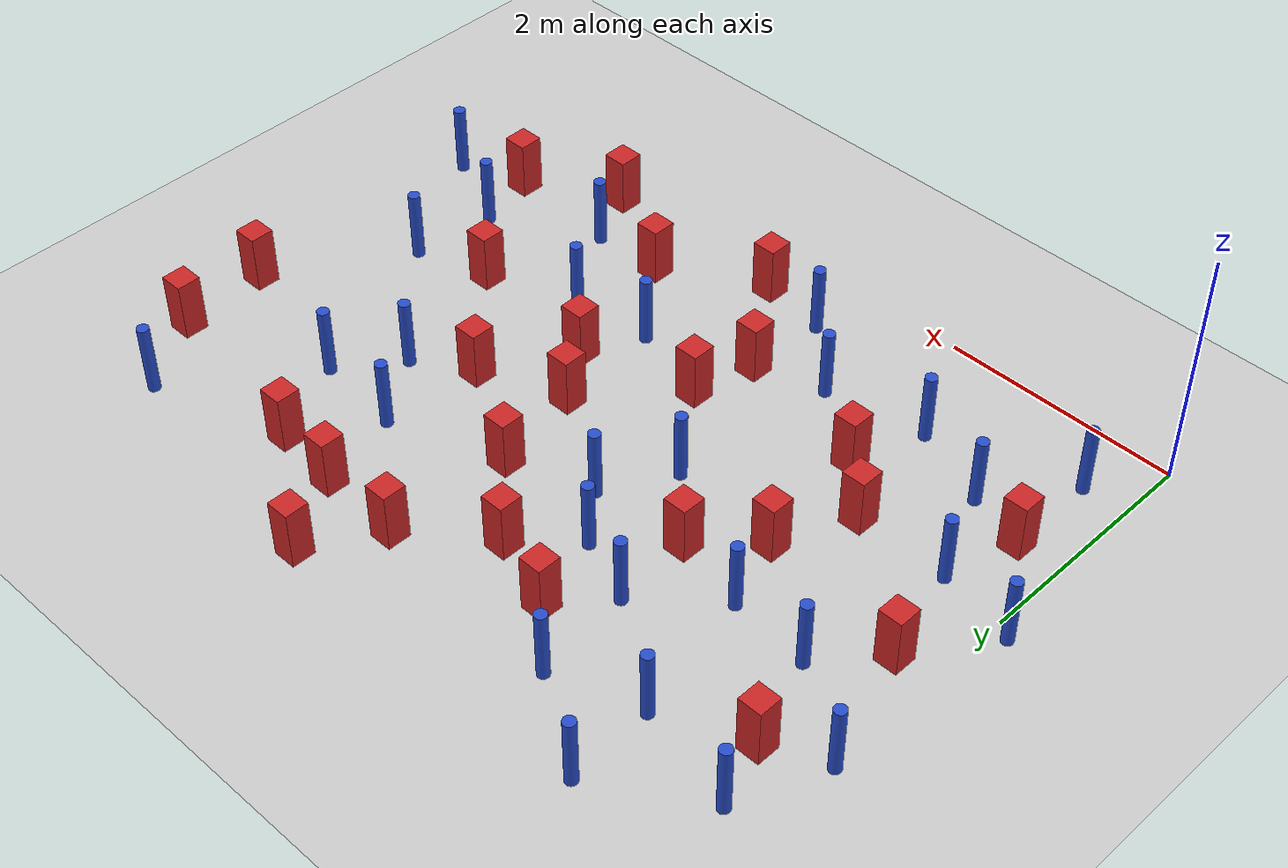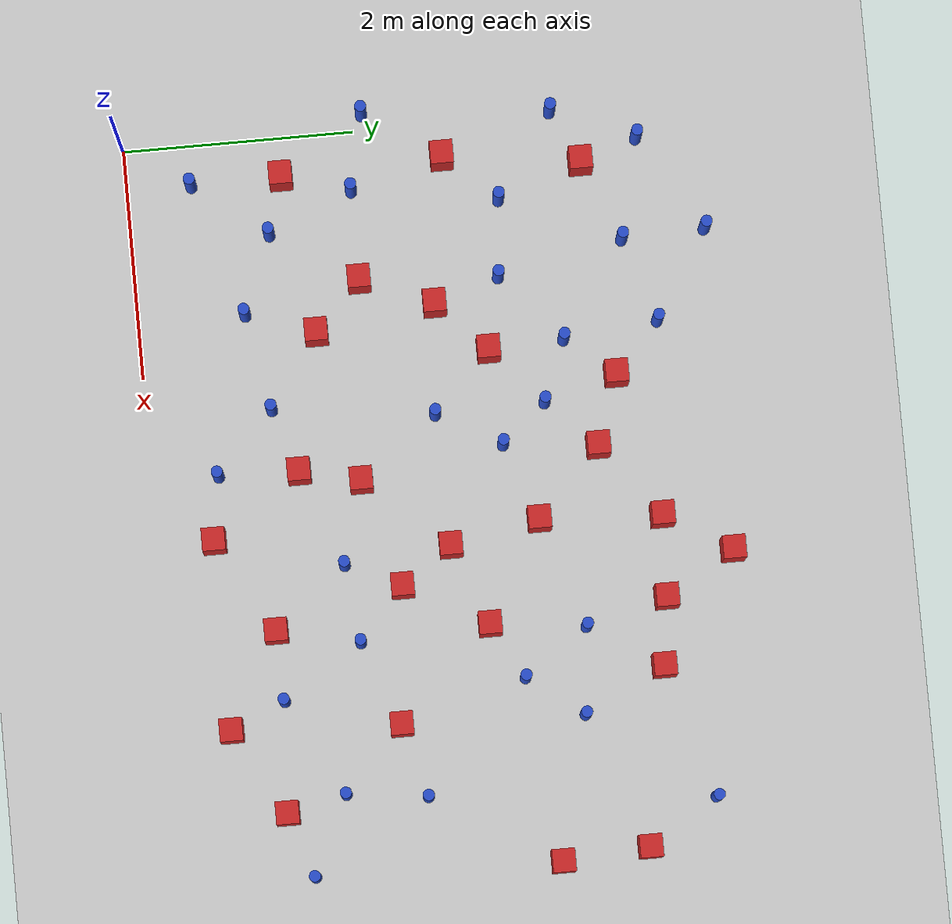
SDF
<sdf version="1.6">
 <world name="default">
  <model name="ground_plane">
   <static>1</static>
   <link name="link">
    <collision name="collision">
     <geometry><plane><normal>0 0 1</normal><size>100 100</size></plane></geometry>
     <surface><friction><ode><mu>100</mu><mu2>50</mu2></ode></friction></surface>
    </collision>
    <visual name="visual">
     <cast_shadows>0</cast_shadows>
     <geometry><plane><normal>0 0 1</normal><size>100 100</size></plane></geometry>
     <material>
      <ambient>1.0 1.0 1.0 1.0</ambient>
      <diffuse>0.8 0.8 0.8 1.0</diffuse>
      <specular>0.01 0.01 0.01 1.000000</specular>
     </material>
    </visual>
   </link>
  </model>
  <model name="pole_obstacle1">
   <static>true</static>
   <pose>2.54243289153 2.50024052344 2.88873142074e-08 -9.90536690232e-09 4.6021994898e-07 -1.20965994968e-07</pose>
   <link name="link">
    <pose>0 0 0.3 0 -0 0</pose>
    <inertial>
     <mass>1</mass>
     <inertia><ixx>0.145833</ixx><ixy>0</ixy><ixz>0</ixz><iyy>0.145833</iyy><iyz>0</iyz><izz>0.125</izz></inertia>
    </inertial>
    <collision name="collision">
     <geometry><cylinder><radius>0.05</radius><length>.6</length></cylinder></geometry>
    </collision>
    <visual name="visual">
     <geometry><cylinder><radius>0.05</radius><length>.6</length></cylinder></geometry>
     <material>
      <script><name>Gazebo/Blue</name><uri>file://media/materials/scripts/gazebo.material</uri></script>
     </material>
    </visual>
   </link>
  </model>
  <model name="square_post_obstacle1">
   <static>true</static>
   <pose>1.74829170394 1.53674628466 8.22691968438e-08 7.2212513382e-06 -7.54495500217e-07 2.29674213826e-05</pose>
   <link name="link">
    <pose>0 0 0.25 0 -0 0</pose>
    <inertial>
     <mass>100</mass>
     <inertia>
      <ixx>0.166667</ixx>
      <ixy>0</ixy>
      <ixz>0</ixz>
      <iyy>0.166667</iyy>
      <iyz>0</iyz>
      <izz>0.166667</izz>
     </inertia>
    </inertial>
    <collision name="collision"><geometry><box><size>.2 .2 .5</size></box></geometry></collision>
    <visual name="visual">
     <geometry><box><size>.2 .2 .5</size></box></geometry>
     <material>
      <script><name>Gazebo/Red</name><uri>file://media/materials/scripts/gazebo.material</uri></script>
     </material>
    </visual>
   </link>
  </model>
  <model name="pole_obstacle5">
   <static>true</static>
   <pose>1.12844807914 4.97022982654 2.88873142074e-08 -9.90536689852e-09 4.60219948989e-07 -1.2096599496e-07</pose>
   <link name="link">
    <pose>0 0 0.3 0 -0 0</pose>
    <inertial>
     <mass>1</mass>
     <inertia><ixx>0.145833</ixx><ixy>0</ixy><ixz>0</ixz><iyy>0.145833</iyy><iyz>0</iyz><izz>0.125</izz></inertia>
    </inertial>
    <collision name="collision">
     <geometry><cylinder><radius>0.05</radius><length>.6</length></cylinder></geometry>
    </collision>
    <visual name="visual">
     <geometry><cylinder><radius>0.05</radius><length>.6</length></cylinder></geometry>
     <material>
      <script><name>Gazebo/Blue</name><uri>file://media/materials/scripts/gazebo.material</uri></script>
     </material>
    </visual>
   </link>
  </model>
  <model name="pole_obstacle7">
   <static>true</static>
   <pose>5.83136260954 2.15012259453 2.88873142074e-08 -9.90536690245e-09 4.6021994898e-07 -1.20965994966e-07</pose>
   <link name="link">
    <pose>0 0 0.3 0 -0 0</pose>
    <inertial>
     <mass>1</mass>
     <inertia><ixx>0.145833</ixx><ixy>0</ixy><ixz>0</ixz><iyy>0.145833</iyy><iyz>0</iyz><izz>0.125</izz></inertia>
    </inertial>
    <collision name="collision">
     <geometry><cylinder><radius>0.05</radius><length>.6</length></cylinder></geometry>
    </collision>
    <visual name="visual">
     <geometry><cylinder><radius>0.05</radius><length>.6</length></cylinder></geometry>
     <material>
      <script><name>Gazebo/Blue</name><uri>file://media/materials/scripts/gazebo.material</uri></script>
     </material>
    </visual>
   </link>
  </model>
  <model name="pole_obstacle11">
   <static>true</static>
   <pose>2.91228357393 0.586450232013 2.88873142074e-08 -9.90536689285e-09 4.60219949002e-07 -1.20965994953e-07</pose>
   <link name="link">
    <pose>0 0 0.3 0 -0 0</pose>
    <inertial>
     <mass>1</mass>
     <inertia><ixx>0.145833</ixx><ixy>0</ixy><ixz>0</ixz><iyy>0.145833</iyy><iyz>0</iyz><izz>0.125</izz></inertia>
    </inertial>
    <collision name="collision">
     <geometry><cylinder><radius>0.05</radius><length>.6</length></cylinder></geometry>
    </collision>
    <visual name="visual">
     <geometry><cylinder><radius>0.05</radius><length>.6</length></cylinder></geometry>
     <material>
      <script><name>Gazebo/Blue</name><uri>file://media/materials/scripts/gazebo.material</uri></script>
     </material>
    </visual>
   </link>
  </model>
  <model name="pole_obstacle23">
   <static>true</static>
   <pose>0.532219835448 1.94401171994 2.88873142074e-08 -9.90536690151e-09 4.60219948982e-07 -1.20965994965e-07</pose>
   <link name="link">
    <pose>0 0 0.3 0 -0 0</pose>
    <inertial>
     <mass>1</mass>
     <inertia><ixx>0.145833</ixx><ixy>0</ixy><ixz>0</ixz><iyy>0.145833</iyy><iyz>0</iyz><izz>0.125</izz></inertia>
    </inertial>
    <collision name="collision">
     <geometry><cylinder><radius>0.05</radius><length>.6</length></cylinder></geometry>
    </collision>
    <visual name="visual">
     <geometry><cylinder><radius>0.05</radius><length>.6</length></cylinder></geometry>
     <material>
      <script><name>Gazebo/Blue</name><uri>file://media/materials/scripts/gazebo.material</uri></script>
     </material>
    </visual>
   </link>
  </model>
  <model name="square_post_obstacle19">
   <static>true</static>
   <pose>3.93917195799 4.95328247818 8.22691968438e-08 7.2212513382e-06 -7.54495500217e-07 2.29674213826e-05</pose>
   <link name="link">
    <pose>0 0 0.25 0 -0 0</pose>
    <inertial>
     <mass>100</mass>
     <inertia>
      <ixx>0.166667</ixx>
      <ixy>0</ixy>
      <ixz>0</ixz>
      <iyy>0.166667</iyy>
      <iyz>0</iyz>
      <izz>0.166667</izz>
     </inertia>
    </inertial>
    <collision name="collision"><geometry><box><size>.2 .2 .5</size></box></geometry></collision>
    <visual name="visual">
     <geometry><box><size>.2 .2 .5</size></box></geometry>
     <material>
      <script><name>Gazebo/Red</name><uri>file://media/materials/scripts/gazebo.material</uri></script>
     </material>
    </visual>
   </link>
  </model>
  <model name="square_post_obstacle24">
   <static>true</static>
   <pose>4.29908365261 0.968296629542 8.22691968438e-08 7.2212513382e-06 -7.54495500217e-07 2.29674213826e-05</pose>
   <link name="link">
    <pose>0 0 0.25 0 -0 0</pose>
    <inertial>
     <mass>100</mass>
     <inertia>
      <ixx>0.166667</ixx>
      <ixy>0</ixy>
      <ixz>0</ixz>
      <iyy>0.166667</iyy>
      <iyz>0</iyz>
      <izz>0.166667</izz>
     </inertia>
    </inertial>
    <collision name="collision"><geometry><box><size>.2 .2 .5</size></box></geometry></collision>
    <visual name="visual">
     <geometry><box><size>.2 .2 .5</size></box></geometry>
     <material>
      <script><name>Gazebo/Red</name><uri>file://media/materials/scripts/gazebo.material</uri></script>
     </material>
    </visual>
   </link>
  </model>
  <model name="square_post_obstacle26">
   <static>true</static>
   <pose>2.94013134057 3.8769609679 8.22691968438e-08 7.2212513382e-06 -7.54495500217e-07 2.29674213826e-05</pose>
   <link name="link">
    <pose>0 0 0.25 0 -0 0</pose>
    <inertial>
     <mass>100</mass>
     <inertia>
      <ixx>0.166667</ixx>
      <ixy>0</ixy>
      <ixz>0</ixz>
      <iyy>0.166667</iyy>
      <iyz>0</iyz>
      <izz>0.166667</izz>
     </inertia>
    </inertial>
    <collision name="collision"><geometry><box><size>.2 .2 .5</size></box></geometry></collision>
    <visual name="visual">
     <geometry><box><size>.2 .2 .5</size></box></geometry>
     <material>
      <script><name>Gazebo/Red</name><uri>file://media/materials/scripts/gazebo.material</uri></script>
     </material>
    </visual>
   </link>
  </model>
  <model name="pole_obstacle36">
   <static>true</static>
   <pose>0.719813225735 3.21163949339 2.88873142074e-08 -9.90536689636e-09 4.60219948994e-07 -1.20965994958e-07</pose>
   <link name="link">
    <pose>0 0 0.3 0 -0 0</pose>
    <inertial>
     <mass>1</mass>
     <inertia><ixx>0.145833</ixx><ixy>0</ixy><ixz>0</ixz><iyy>0.145833</iyy><iyz>0</iyz><izz>0.125</izz></inertia>
    </inertial>
    <collision name="collision">
     <geometry><cylinder><radius>0.05</radius><length>.6</length></cylinder></geometry>
    </collision>
    <visual name="visual">
     <geometry><cylinder><radius>0.05</radius><length>.6</length></cylinder></geometry>
     <material>
      <script><name>Gazebo/Blue</name><uri>file://media/materials/scripts/gazebo.material</uri></script>
     </material>
    </visual>
   </link>
  </model>
  <model name="pole_obstacle38">
   <static>true</static>
   <pose>5.24400897094 3.56089953691 2.88873142074e-08 -9.90536690245e-09 4.6021994898e-07 -1.20965994966e-07</pose>
   <link name="link">
    <pose>0 0 0.3 0 -0 0</pose>
    <inertial>
     <mass>1</mass>
     <inertia><ixx>0.145833</ixx><ixy>0</ixy><ixz>0</ixz><iyy>0.145833</iyy><iyz>0</iyz><izz>0.125</izz></inertia>
    </inertial>
    <collision name="collision">
     <geometry><cylinder><radius>0.05</radius><length>.6</length></cylinder></geometry>
    </collision>
    <visual name="visual">
     <geometry><cylinder><radius>0.05</radius><length>.6</length></cylinder></geometry>
     <material>
      <script><name>Gazebo/Blue</name><uri>file://media/materials/scripts/gazebo.material</uri></script>
     </material>
    </visual>
   </link>
  </model>
  <model name="pole_obstacle42">
   <static>true</static>
   <pose>4.45527481419 1.6870616188 2.88873142074e-08 -9.90536689445e-09 4.60219948999e-07 -1.20965994956e-07</pose>
   <link name="link">
    <pose>0 0 0.3 0 -0 0</pose>
    <inertial>
     <mass>1</mass>
     <inertia><ixx>0.145833</ixx><ixy>0</ixy><ixz>0</ixz><iyy>0.145833</iyy><iyz>0</iyz><izz>0.125</izz></inertia>
    </inertial>
    <collision name="collision">
     <geometry><cylinder><radius>0.05</radius><length>.6</length></cylinder></geometry>
    </collision>
    <visual name="visual">
     <geometry><cylinder><radius>0.05</radius><length>.6</length></cylinder></geometry>
     <material>
      <script><name>Gazebo/Blue</name><uri>file://media/materials/scripts/gazebo.material</uri></script>
     </material>
    </visual>
   </link>
  </model>
  <model name="square_post_obstacle32">
   <static>true</static>
   <pose>1.58821901534 2.57767962358 8.22691968438e-08 7.2212513382e-06 -7.54495500217e-07 2.29674213826e-05</pose>
   <link name="link">
    <pose>0 0 0.25 0 -0 0</pose>
    <inertial>
     <mass>100</mass>
     <inertia>
      <ixx>0.166667</ixx>
      <ixy>0</ixy>
      <ixz>0</ixz>
      <iyy>0.166667</iyy>
      <iyz>0</iyz>
      <izz>0.166667</izz>
     </inertia>
    </inertial>
    <collision name="collision"><geometry><box><size>.2 .2 .5</size></box></geometry></collision>
    <visual name="visual">
     <geometry><box><size>.2 .2 .5</size></box></geometry>
     <material>
      <script><name>Gazebo/Red</name><uri>file://media/materials/scripts/gazebo.material</uri></script>
     </material>
    </visual>
   </link>
  </model>
  <model name="pole_obstacle45">
   <static>true</static>
   <pose>0.852100597493 1.2036267746 2.88873142074e-08 -9.90536689855e-09 4.60219948989e-07 -1.20965994962e-07</pose>
   <link name="link">
    <pose>0 0 0.3 0 -0 0</pose>
    <inertial>
     <mass>1</mass>
     <inertia><ixx>0.145833</ixx><ixy>0</ixy><ixz>0</ixz><iyy>0.145833</iyy><iyz>0</iyz><izz>0.125</izz></inertia>
    </inertial>
    <collision name="collision">
     <geometry><cylinder><radius>0.05</radius><length>.6</length></cylinder></geometry>
    </collision>
    <visual name="visual">
     <geometry><cylinder><radius>0.05</radius><length>.6</length></cylinder></geometry>
     <material>
      <script><name>Gazebo/Blue</name><uri>file://media/materials/scripts/gazebo.material</uri></script>
     </material>
    </visual>
   </link>
  </model>
  <model name="pole_obstacle47">
   <static>true</static>
   <pose>0.287064323413 4.44819121987 2.88873142074e-08 -9.90536689592e-09 4.60219948995e-07 -1.20965994956e-07</pose>
   <link name="link">
    <pose>0 0 0.3 0 -0 0</pose>
    <inertial>
     <mass>1</mass>
     <inertia><ixx>0.145833</ixx><ixy>0</ixy><ixz>0</ixz><iyy>0.145833</iyy><iyz>0</iyz><izz>0.125</izz></inertia>
    </inertial>
    <collision name="collision">
     <geometry><cylinder><radius>0.05</radius><length>.6</length></cylinder></geometry>
    </collision>
    <visual name="visual">
     <geometry><cylinder><radius>0.05</radius><length>.6</length></cylinder></geometry>
     <material>
      <script><name>Gazebo/Blue</name><uri>file://media/materials/scripts/gazebo.material</uri></script>
     </material>
    </visual>
   </link>
  </model>
  <model name="square_post_obstacle49">
   <static>true</static>
   <pose>4.39979528603 2.80769007555 8.22691968438e-08 7.2212513382e-06 -7.54495500217e-07 2.29674213826e-05</pose>
   <link name="link">
    <pose>0 0 0.25 0 -0 0</pose>
    <inertial>
     <mass>100</mass>
     <inertia>
      <ixx>0.166667</ixx>
      <ixy>0</ixy>
      <ixz>0</ixz>
      <iyy>0.166667</iyy>
      <iyz>0</iyz>
      <izz>0.166667</izz>
     </inertia>
    </inertial>
    <collision name="collision"><geometry><box><size>.2 .2 .5</size></box></geometry></collision>
    <visual name="visual">
     <geometry><box><size>.2 .2 .5</size></box></geometry>
     <material>
      <script><name>Gazebo/Red</name><uri>file://media/materials/scripts/gazebo.material</uri></script>
     </material>
    </visual>
   </link>
  </model>
  <model name="pole_obstacle70">
   <static>true</static>
   <pose>2.51939892547 3.45208205143 2.88873142074e-08 -9.90536690232e-09 4.6021994898e-07 -1.20965994968e-07</pose>
   <link name="link">
    <pose>0 0 0.3 0 -0 0</pose>
    <inertial>
     <mass>1</mass>
     <inertia><ixx>0.145833</ixx><ixy>0</ixy><ixz>0</ixz><iyy>0.145833</iyy><iyz>0</iyz><izz>0.125</izz></inertia>
    </inertial>
    <collision name="collision">
     <geometry><cylinder><radius>0.05</radius><length>.6</length></cylinder></geometry>
    </collision>
    <visual name="visual">
     <geometry><cylinder><radius>0.05</radius><length>.6</length></cylinder></geometry>
     <material>
      <script><name>Gazebo/Blue</name><uri>file://media/materials/scripts/gazebo.material</uri></script>
     </material>
    </visual>
   </link>
  </model>
  <model name="pole_obstacle73">
   <static>true</static>
   <pose>6.04638528284 4.62262375751 2.88873142074e-08 -9.90536690842e-09 4.60219948965e-07 -1.20965994976e-07</pose>
   <link name="link">
    <pose>0 0 0.3 0 -0 0</pose>
    <inertial>
     <mass>1</mass>
     <inertia><ixx>0.145833</ixx><ixy>0</ixy><ixz>0</ixz><iyy>0.145833</iyy><iyz>0</iyz><izz>0.125</izz></inertia>
    </inertial>
    <collision name="collision">
     <geometry><cylinder><radius>0.05</radius><length>.6</length></cylinder></geometry>
    </collision>
    <visual name="visual">
     <geometry><cylinder><radius>0.05</radius><length>.6</length></cylinder></geometry>
     <material>
      <script><name>Gazebo/Blue</name><uri>file://media/materials/scripts/gazebo.material</uri></script>
     </material>
    </visual>
   </link>
  </model>
  <model name="square_post_obstacle64">
   <static>true</static>
   <pose>4.00479671098 2.08693640731 8.22691968438e-08 7.2212513382e-06 -7.54495500217e-07 2.29674213826e-05</pose>
   <link name="link">
    <pose>0 0 0.25 0 -0 0</pose>
    <inertial>
     <mass>100</mass>
     <inertia>
      <ixx>0.166667</ixx>
      <ixy>0</ixy>
      <ixz>0</ixz>
      <iyy>0.166667</iyy>
      <iyz>0</iyz>
      <izz>0.166667</izz>
     </inertia>
    </inertial>
    <collision name="collision"><geometry><box><size>.2 .2 .5</size></box></geometry></collision>
    <visual name="visual">
     <geometry><box><size>.2 .2 .5</size></box></geometry>
     <material>
      <script><name>Gazebo/Red</name><uri>file://media/materials/scripts/gazebo.material</uri></script>
     </material>
    </visual>
   </link>
  </model>
  <model name="square_post_obstacle66">
   <static>true</static>
   <pose>6.42801190347 4.00615206048 8.22691968438e-08 7.22125133819e-06 -7.54495500217e-07 2.29674213826e-05</pose>
   <link name="link">
    <pose>0 0 0.25 0 -0 0</pose>
    <inertial>
     <mass>100</mass>
     <inertia>
      <ixx>0.166667</ixx>
      <ixy>0</ixy>
      <ixz>0</ixz>
      <iyy>0.166667</iyy>
      <iyz>0</iyz>
      <izz>0.166667</izz>
     </inertia>
    </inertial>
    <collision name="collision"><geometry><box><size>.2 .2 .5</size></box></geometry></collision>
    <visual name="visual">
     <geometry><box><size>.2 .2 .5</size></box></geometry>
     <material>
      <script><name>Gazebo/Red</name><uri>file://media/materials/scripts/gazebo.material</uri></script>
     </material>
    </visual>
   </link>
  </model>
  <model name="square_post_obstacle67">
   <static>true</static>
   <pose>4.88752008409 4.26986938237 8.22691968438e-08 7.2212513382e-06 -7.54495500217e-07 2.29674213826e-05</pose>
   <link name="link">
    <pose>0 0 0.25 0 -0 0</pose>
    <inertial>
     <mass>100</mass>
     <inertia>
      <ixx>0.166667</ixx>
      <ixy>0</ixy>
      <ixz>0</ixz>
      <iyy>0.166667</iyy>
      <iyz>0</iyz>
      <izz>0.166667</izz>
     </inertia>
    </inertial>
    <collision name="collision"><geometry><box><size>.2 .2 .5</size></box></geometry></collision>
    <visual name="visual">
     <geometry><box><size>.2 .2 .5</size></box></geometry>
     <material>
      <script><name>Gazebo/Red</name><uri>file://media/materials/scripts/gazebo.material</uri></script>
     </material>
    </visual>
   </link>
  </model>
  <model name="pole_obstacle88">
   <static>true</static>
   <pose>4.90336193203 0.987934191071 2.88873142074e-08 -9.90536689329e-09 4.60219949001e-07 -1.20965994952e-07</pose>
   <link name="link">
    <pose>0 0 0.3 0 -0 0</pose>
    <inertial>
     <mass>1</mass>
     <inertia><ixx>0.145833</ixx><ixy>0</ixy><ixz>0</ixz><iyy>0.145833</iyy><iyz>0</iyz><izz>0.125</izz></inertia>
    </inertial>
    <collision name="collision">
     <geometry><cylinder><radius>0.05</radius><length>.6</length></cylinder></geometry>
    </collision>
    <visual name="visual">
     <geometry><cylinder><radius>0.05</radius><length>.6</length></cylinder></geometry>
     <material>
      <script><name>Gazebo/Blue</name><uri>file://media/materials/scripts/gazebo.material</uri></script>
     </material>
    </visual>
   </link>
  </model>
  <model name="square_post_obstacle81">
   <static>true</static>
   <pose>0.311613498666 2.752290645 8.22691968438e-08 7.22125133819e-06 -7.54495500217e-07 2.29674213826e-05</pose>
   <link name="link">
    <pose>0 0 0.25 0 -0 0</pose>
    <inertial>
     <mass>100</mass>
     <inertia>
      <ixx>0.166667</ixx>
      <ixy>0</ixy>
      <ixz>0</ixz>
      <iyy>0.166667</iyy>
      <iyz>0</iyz>
      <izz>0.166667</izz>
     </inertia>
    </inertial>
    <collision name="collision"><geometry><box><size>.2 .2 .5</size></box></geometry></collision>
    <visual name="visual">
     <geometry><box><size>.2 .2 .5</size></box></geometry>
     <material>
      <script><name>Gazebo/Red</name><uri>file://media/materials/scripts/gazebo.material</uri></script>
     </material>
    </visual>
   </link>
  </model>
  <model name="pole_obstacle96">
   <static>true</static>
   <pose>4.48810299044 3.63798367042 2.88873142074e-08 -9.90536690245e-09 4.6021994898e-07 -1.20965994966e-07</pose>
   <link name="link">
    <pose>0 0 0.3 0 -0 0</pose>
    <inertial>
     <mass>1</mass>
     <inertia><ixx>0.145833</ixx><ixy>0</ixy><ixz>0</ixz><iyy>0.145833</iyy><iyz>0</iyz><izz>0.125</izz></inertia>
    </inertial>
    <collision name="collision">
     <geometry><cylinder><radius>0.05</radius><length>.6</length></cylinder></geometry>
    </collision>
    <visual name="visual">
     <geometry><cylinder><radius>0.05</radius><length>.6</length></cylinder></geometry>
     <material>
      <script><name>Gazebo/Blue</name><uri>file://media/materials/scripts/gazebo.material</uri></script>
     </material>
    </visual>
   </link>
  </model>
  <model name="square_post_obstacle97">
   <static>true</static>
   <pose>3.58976983883 4.37300203669 8.22691968438e-08 7.2212513382e-06 -7.54495500217e-07 2.29674213826e-05</pose>
   <link name="link">
    <pose>0 0 0.25 0 -0 0</pose>
    <inertial>
     <mass>100</mass>
     <inertia>
      <ixx>0.166667</ixx>
      <ixy>0</ixy>
      <ixz>0</ixz>
      <iyy>0.166667</iyy>
      <iyz>0</iyz>
      <izz>0.166667</izz>
     </inertia>
    </inertial>
    <collision name="collision"><geometry><box><size>.2 .2 .5</size></box></geometry></collision>
    <visual name="visual">
     <geometry><box><size>.2 .2 .5</size></box></geometry>
     <material>
      <script><name>Gazebo/Red</name><uri>file://media/materials/scripts/gazebo.material</uri></script>
     </material>
    </visual>
   </link>
  </model>
  <model name="square_post_obstacle106">
   <static>true</static>
   <pose>6.48640214502 3.25165442779 8.22691968438e-08 7.2212513382e-06 -7.54495500217e-07 2.29674213826e-05</pose>
   <link name="link">
    <pose>0 0 0.25 0 -0 0</pose>
    <inertial>
     <mass>100</mass>
     <inertia>
      <ixx>0.166667</ixx>
      <ixy>0</ixy>
      <ixz>0</ixz>
      <iyy>0.166667</iyy>
      <iyz>0</iyz>
      <izz>0.166667</izz>
     </inertia>
    </inertial>
    <collision name="collision"><geometry><box><size>.2 .2 .5</size></box></geometry></collision>
    <visual name="visual">
     <geometry><box><size>.2 .2 .5</size></box></geometry>
     <material>
      <script><name>Gazebo/Red</name><uri>file://media/materials/scripts/gazebo.material</uri></script>
     </material>
    </visual>
   </link>
  </model>
  <model name="square_post_obstacle109">
   <static>true</static>
   <pose>2.0257037934 3.0075935151 8.22691968438e-08 7.2212513382e-06 -7.54495500217e-07 2.29674213826e-05</pose>
   <link name="link">
    <pose>0 0 0.25 0 -0 0</pose>
    <inertial>
     <mass>100</mass>
     <inertia>
      <ixx>0.166667</ixx>
      <ixy>0</ixy>
      <ixz>0</ixz>
      <iyy>0.166667</iyy>
      <iyz>0</iyz>
      <izz>0.166667</izz>
     </inertia>
    </inertial>
    <collision name="collision"><geometry><box><size>.2 .2 .5</size></box></geometry></collision>
    <visual name="visual">
     <geometry><box><size>.2 .2 .5</size></box></geometry>
     <material>
      <script><name>Gazebo/Red</name><uri>file://media/materials/scripts/gazebo.material</uri></script>
     </material>
    </visual>
   </link>
  </model>
  <model name="square_post_obstacle111">
   <static>true</static>
   <pose>1.32040254499 1.94514429029 8.22691968438e-08 7.2212513382e-06 -7.54495500217e-07 2.29674213826e-05</pose>
   <link name="link">
    <pose>0 0 0.25 0 -0 0</pose>
    <inertial>
     <mass>100</mass>
     <inertia>
      <ixx>0.166667</ixx>
      <ixy>0</ixy>
      <ixz>0</ixz>
      <iyy>0.166667</iyy>
      <iyz>0</iyz>
      <izz>0.166667</izz>
     </inertia>
    </inertial>
    <collision name="collision"><geometry><box><size>.2 .2 .5</size></box></geometry></collision>
    <visual name="visual">
     <geometry><box><size>.2 .2 .5</size></box></geometry>
     <material>
      <script><name>Gazebo/Red</name><uri>file://media/materials/scripts/gazebo.material</uri></script>
     </material>
    </visual>
   </link>
  </model>
  <model name="square_post_obstacle116">
   <static>true</static>
   <pose>3.47683535159 0.502364670856 8.22691968438e-08 7.2212513382e-06 -7.54495500217e-07 2.29674213826e-05</pose>
   <link name="link">
    <pose>0 0 0.25 0 -0 0</pose>
    <inertial>
     <mass>100</mass>
     <inertia>
      <ixx>0.166667</ixx>
      <ixy>0</ixy>
      <ixz>0</ixz>
      <iyy>0.166667</iyy>
      <iyz>0</iyz>
      <izz>0.166667</izz>
     </inertia>
    </inertial>
    <collision name="collision"><geometry><box><size>.2 .2 .5</size></box></geometry></collision>
    <visual name="visual">
     <geometry><box><size>.2 .2 .5</size></box></geometry>
     <material>
      <script><name>Gazebo/Red</name><uri>file://media/materials/scripts/gazebo.material</uri></script>
     </material>
    </visual>
   </link>
  </model>
  <model name="square_post_obstacle117">
   <static>true</static>
   <pose>5.19386603879 1.97546969851 8.22691968438e-08 7.2212513382e-06 -7.54495500217e-07 2.29674213826e-05</pose>
   <link name="link">
    <pose>0 0 0.25 0 -0 0</pose>
    <inertial>
     <mass>100</mass>
     <inertia>
      <ixx>0.166667</ixx>
      <ixy>0</ixy>
      <ixz>0</ixz>
      <iyy>0.166667</iyy>
      <iyz>0</iyz>
      <izz>0.166667</izz>
     </inertia>
    </inertial>
    <collision name="collision"><geometry><box><size>.2 .2 .5</size></box></geometry></collision>
    <visual name="visual">
     <geometry><box><size>.2 .2 .5</size></box></geometry>
     <material>
      <script><name>Gazebo/Red</name><uri>file://media/materials/scripts/gazebo.material</uri></script>
     </material>
    </visual>
   </link>
  </model>
  <model name="square_post_obstacle120">
   <static>true</static>
   <pose>2.33437008181 4.08827922512 8.22691968438e-08 7.22125133819e-06 -7.54495500217e-07 2.29674213826e-05</pose>
   <link name="link">
    <pose>0 0 0.25 0 -0 0</pose>
    <inertial>
     <mass>100</mass>
     <inertia>
      <ixx>0.166667</ixx>
      <ixy>0</ixy>
      <ixz>0</ixz>
      <iyy>0.166667</iyy>
      <iyz>0</iyz>
      <izz>0.166667</izz>
     </inertia>
    </inertial>
    <collision name="collision"><geometry><box><size>.2 .2 .5</size></box></geometry></collision>
    <visual name="visual">
     <geometry><box><size>.2 .2 .5</size></box></geometry>
     <material>
      <script><name>Gazebo/Red</name><uri>file://media/materials/scripts/gazebo.material</uri></script>
     </material>
    </visual>
   </link>
  </model>
  <model name="pole_obstacle120">
   <static>true</static>
   <pose>6.43491930424 1.12261806366 2.88873142074e-08 -9.90536689445e-09 4.60219948999e-07 -1.20965994956e-07</pose>
   <link name="link">
    <pose>0 0 0.3 0 -0 0</pose>
    <inertial>
     <mass>1</mass>
     <inertia><ixx>0.145833</ixx><ixy>0</ixy><ixz>0</ixz><iyy>0.145833</iyy><iyz>0</iyz><izz>0.125</izz></inertia>
    </inertial>
    <collision name="collision">
     <geometry><cylinder><radius>0.05</radius><length>.6</length></cylinder></geometry>
    </collision>
    <visual name="visual">
     <geometry><cylinder><radius>0.05</radius><length>.6</length></cylinder></geometry>
     <material>
      <script><name>Gazebo/Blue</name><uri>file://media/materials/scripts/gazebo.material</uri></script>
     </material>
    </visual>
   </link>
  </model>
  <model name="pole_obstacle129">
   <static>true</static>
   <pose>2.37690745939 1.09409474147 2.88873142074e-08 -9.90536689395e-09 4.60219949e-07 -1.20965994953e-07</pose>
   <link name="link">
    <pose>0 0 0.3 0 -0 0</pose>
    <inertial>
     <mass>1</mass>
     <inertia><ixx>0.145833</ixx><ixy>0</ixy><ixz>0</ixz><iyy>0.145833</iyy><iyz>0</iyz><izz>0.125</izz></inertia>
    </inertial>
    <collision name="collision">
     <geometry><cylinder><radius>0.05</radius><length>.6</length></cylinder></geometry>
    </collision>
    <visual name="visual">
     <geometry><cylinder><radius>0.05</radius><length>.6</length></cylinder></geometry>
     <material>
      <script><name>Gazebo/Blue</name><uri>file://media/materials/scripts/gazebo.material</uri></script>
     </material>
    </visual>
   </link>
  </model>
  <model name="square_post_obstacle126">
   <static>true</static>
   <pose>3.53223254282 3.31187809119 8.22691968438e-08 7.2212513382e-06 -7.54495500217e-07 2.29674213826e-05</pose>
   <link name="link">
    <pose>0 0 0.25 0 -0 0</pose>
    <inertial>
     <mass>100</mass>
     <inertia>
      <ixx>0.166667</ixx>
      <ixy>0</ixy>
      <ixz>0</ixz>
      <iyy>0.166667</iyy>
      <iyz>0</iyz>
      <izz>0.166667</izz>
     </inertia>
    </inertial>
    <collision name="collision"><geometry><box><size>.2 .2 .5</size></box></geometry></collision>
    <visual name="visual">
     <geometry><box><size>.2 .2 .5</size></box></geometry>
     <material>
      <script><name>Gazebo/Red</name><uri>file://media/materials/scripts/gazebo.material</uri></script>
     </material>
    </visual>
   </link>
  </model>
  <model name="pole_obstacle132">
   <static>true</static>
   <pose>3.77574726675 1.60524345823 2.88873142074e-08 -9.90536689395e-09 4.60219949e-07 -1.20965994953e-07</pose>
   <link name="link">
    <pose>0 0 0.3 0 -0 0</pose>
    <inertial>
     <mass>1</mass>
     <inertia><ixx>0.145833</ixx><ixy>0</ixy><ixz>0</ixz><iyy>0.145833</iyy><iyz>0</iyz><izz>0.125</izz></inertia>
    </inertial>
    <collision name="collision">
     <geometry><cylinder><radius>0.05</radius><length>.6</length></cylinder></geometry>
    </collision>
    <visual name="visual">
     <geometry><cylinder><radius>0.05</radius><length>.6</length></cylinder></geometry>
     <material>
      <script><name>Gazebo/Blue</name><uri>file://media/materials/scripts/gazebo.material</uri></script>
     </material>
    </visual>
   </link>
  </model>
  <model name="pole_obstacle135">
   <static>true</static>
   <pose>1.39513938043 3.14905824381 2.88873142074e-08 -9.90536689791e-09 4.6021994899e-07 -1.20965994959e-07</pose>
   <link name="link">
    <pose>0 0 0.3 0 -0 0</pose>
    <inertial>
     <mass>1</mass>
     <inertia><ixx>0.145833</ixx><ixy>0</ixy><ixz>0</ixz><iyy>0.145833</iyy><iyz>0</iyz><izz>0.125</izz></inertia>
    </inertial>
    <collision name="collision">
     <geometry><cylinder><radius>0.05</radius><length>.6</length></cylinder></geometry>
    </collision>
    <visual name="visual">
     <geometry><cylinder><radius>0.05</radius><length>.6</length></cylinder></geometry>
     <material>
      <script><name>Gazebo/Blue</name><uri>file://media/materials/scripts/gazebo.material</uri></script>
     </material>
    </visual>
   </link>
  </model>
  <model name="pole_obstacle141">
   <static>true</static>
   <pose>5.74978489364 1.4472985265 2.88873142074e-08 -9.90536689445e-09 4.60219948999e-07 -1.20965994956e-07</pose>
   <link name="link">
    <pose>0 0 0.3 0 -0 0</pose>
    <inertial>
     <mass>1</mass>
     <inertia><ixx>0.145833</ixx><ixy>0</ixy><ixz>0</ixz><iyy>0.145833</iyy><iyz>0</iyz><izz>0.125</izz></inertia>
    </inertial>
    <collision name="collision">
     <geometry><cylinder><radius>0.05</radius><length>.6</length></cylinder></geometry>
    </collision>
    <visual name="visual">
     <geometry><cylinder><radius>0.05</radius><length>.6</length></cylinder></geometry>
     <material>
      <script><name>Gazebo/Blue</name><uri>file://media/materials/scripts/gazebo.material</uri></script>
     </material>
    </visual>
   </link>
  </model>
  <model name="pole_obstacle143">
   <static>true</static>
   <pose>1.16054235668 4.24568234263 2.88873142074e-08 -9.90536689852e-09 4.60219948989e-07 -1.2096599496e-07</pose>
   <link name="link">
    <pose>0 0 0.3 0 -0 0</pose>
    <inertial>
     <mass>1</mass>
     <inertia><ixx>0.145833</ixx><ixy>0</ixy><ixz>0</ixz><iyy>0.145833</iyy><iyz>0</iyz><izz>0.125</izz></inertia>
    </inertial>
    <collision name="collision">
     <geometry><cylinder><radius>0.05</radius><length>.6</length></cylinder></geometry>
    </collision>
    <visual name="visual">
     <geometry><cylinder><radius>0.05</radius><length>.6</length></cylinder></geometry>
     <material>
      <script><name>Gazebo/Blue</name><uri>file://media/materials/scripts/gazebo.material</uri></script>
     </material>
    </visual>
   </link>
  </model>
  <model name="pole_obstacle152">
   <static>true</static>
   <pose>1.53366674751 0.93514870265 2.88873142074e-08 -9.90536689692e-09 4.60219948993e-07 -1.20965994958e-07</pose>
   <link name="link">
    <pose>0 0 0.3 0 -0 0</pose>
    <inertial>
     <mass>1</mass>
     <inertia><ixx>0.145833</ixx><ixy>0</ixy><ixz>0</ixz><iyy>0.145833</iyy><iyz>0</iyz><izz>0.125</izz></inertia>
    </inertial>
    <collision name="collision">
     <geometry><cylinder><radius>0.05</radius><length>.6</length></cylinder></geometry>
    </collision>
    <visual name="visual">
     <geometry><cylinder><radius>0.05</radius><length>.6</length></cylinder></geometry>
     <material>
      <script><name>Gazebo/Blue</name><uri>file://media/materials/scripts/gazebo.material</uri></script>
     </material>
    </visual>
   </link>
  </model>
  <model name="square_post_obstacle157">
   <static>true</static>
   <pose>0.36475333631 1.34739077648 8.22691968438e-08 7.2212513382e-06 -7.54495500217e-07 2.29674213826e-05</pose>
   <link name="link">
    <pose>0 0 0.25 0 -0 0</pose>
    <inertial>
     <mass>100</mass>
     <inertia>
      <ixx>0.166667</ixx>
      <ixy>0</ixy>
      <ixz>0</ixz>
      <iyy>0.166667</iyy>
      <iyz>0</iyz>
      <izz>0.166667</izz>
     </inertia>
    </inertial>
    <collision name="collision"><geometry><box><size>.2 .2 .5</size></box></geometry></collision>
    <visual name="visual">
     <geometry><box><size>.2 .2 .5</size></box></geometry>
     <material>
      <script><name>Gazebo/Red</name><uri>file://media/materials/scripts/gazebo.material</uri></script>
     </material>
    </visual>
   </link>
  </model>
  <model name="pole_obstacle166">
   <static>true</static>
   <pose>4.88243767865 3.07377100589 2.88873142074e-08 -9.90536690245e-09 4.6021994898e-07 -1.20965994966e-07</pose>
   <link name="link">
    <pose>0 0 0.3 0 -0 0</pose>
    <inertial>
     <mass>1</mass>
     <inertia><ixx>0.145833</ixx><ixy>0</ixy><ixz>0</ixz><iyy>0.145833</iyy><iyz>0</iyz><izz>0.125</izz></inertia>
    </inertial>
    <collision name="collision">
     <geometry><cylinder><radius>0.05</radius><length>.6</length></cylinder></geometry>
    </collision>
    <visual name="visual">
     <geometry><cylinder><radius>0.05</radius><length>.6</length></cylinder></geometry>
     <material>
      <script><name>Gazebo/Blue</name><uri>file://media/materials/scripts/gazebo.material</uri></script>
     </material>
    </visual>
   </link>
  </model>
  <model name="square_post_obstacle164">
   <static>true</static>
   <pose>0.462045792208 3.94594068263 8.22691968438e-08 7.2212513382e-06 -7.54495500217e-07 2.29674213826e-05</pose>
   <link name="link">
    <pose>0 0 0.25 0 -0 0</pose>
    <inertial>
     <mass>100</mass>
     <inertia>
      <ixx>0.166667</ixx>
      <ixy>0</ixy>
      <ixz>0</ixz>
      <iyy>0.166667</iyy>
      <iyz>0</iyz>
      <izz>0.166667</izz>
     </inertia>
    </inertial>
    <collision name="collision"><geometry><box><size>.2 .2 .5</size></box></geometry></collision>
    <visual name="visual">
     <geometry><box><size>.2 .2 .5</size></box></geometry>
     <material>
      <script><name>Gazebo/Red</name><uri>file://media/materials/scripts/gazebo.material</uri></script>
     </material>
    </visual>
   </link>
  </model>
  <model name="square_post_obstacle169">
   <static>true</static>
   <pose>3.06398414615 1.8120272519 8.22691968438e-08 7.2212513382e-06 -7.54495500217e-07 2.29674213826e-05</pose>
   <link name="link">
    <pose>0 0 0.25 0 -0 0</pose>
    <inertial>
     <mass>100</mass>
     <inertia>
      <ixx>0.166667</ixx>
      <ixy>0</ixy>
      <ixz>0</ixz>
      <iyy>0.166667</iyy>
      <iyz>0</iyz>
      <izz>0.166667</izz>
     </inertia>
    </inertial>
    <collision name="collision"><geometry><box><size>.2 .2 .5</size></box></geometry></collision>
    <visual name="visual">
     <geometry><box><size>.2 .2 .5</size></box></geometry>
     <material>
      <script><name>Gazebo/Red</name><uri>file://media/materials/scripts/gazebo.material</uri></script>
     </material>
    </visual>
   </link>
  </model>
  <model name="square_post_obstacle181">
   <static>true</static>
   <pose>3.69203833017 2.53156800565 8.22691968438e-08 7.2212513382e-06 -7.54495500217e-07 2.29674213826e-05</pose>
   <link name="link">
    <pose>0 0 0.25 0 -0 0</pose>
    <inertial>
     <mass>100</mass>
     <inertia>
      <ixx>0.166667</ixx>
      <ixy>0</ixy>
      <ixz>0</ixz>
      <iyy>0.166667</iyy>
      <iyz>0</iyz>
      <izz>0.166667</izz>
     </inertia>
    </inertial>
    <collision name="collision"><geometry><box><size>.2 .2 .5</size></box></geometry></collision>
    <visual name="visual">
     <geometry><box><size>.2 .2 .5</size></box></geometry>
     <material>
      <script><name>Gazebo/Red</name><uri>file://media/materials/scripts/gazebo.material</uri></script>
     </material>
    </visual>
   </link>
  </model>
  <model name="pole_obstacle184">
   <static>true</static>
   <pose>1.98709768342 3.66480843405 2.88873142074e-08 -9.90536689941e-09 4.60219948987e-07 -1.20965994961e-07</pose>
   <link name="link">
    <pose>0 0 0.3 0 -0 0</pose>
    <inertial>
     <mass>1</mass>
     <inertia><ixx>0.145833</ixx><ixy>0</ixy><ixz>0</ixz><iyy>0.145833</iyy><iyz>0</iyz><izz>0.125</izz></inertia>
    </inertial>
    <collision name="collision">
     <geometry><cylinder><radius>0.05</radius><length>.6</length></cylinder></geometry>
    </collision>
    <visual name="visual">
     <geometry><cylinder><radius>0.05</radius><length>.6</length></cylinder></geometry>
     <material>
      <script><name>Gazebo/Blue</name><uri>file://media/materials/scripts/gazebo.material</uri></script>
     </material>
    </visual>
   </link>
  </model>
  <model name="pole_obstacle185">
   <static>true</static>
   <pose>-0.0077028454236 3.72185977339 2.88873142074e-08 -9.90536692401e-09 4.60219948928e-07 -1.20965994988e-07</pose>
   <link name="link">
    <pose>0 0 0.3 0 -0 0</pose>
    <inertial>
     <mass>1</mass>
     <inertia><ixx>0.145833</ixx><ixy>0</ixy><ixz>0</ixz><iyy>0.145833</iyy><iyz>0</iyz><izz>0.125</izz></inertia>
    </inertial>
    <collision name="collision">
     <geometry><cylinder><radius>0.05</radius><length>.6</length></cylinder></geometry>
    </collision>
    <visual name="visual">
     <geometry><cylinder><radius>0.05</radius><length>.6</length></cylinder></geometry>
     <material>
      <script><name>Gazebo/Blue</name><uri>file://media/materials/scripts/gazebo.material</uri></script>
     </material>
    </visual>
   </link>
  </model>
  <model name="square_post_obstacle184">
   <static>true</static>
   <pose>5.12074218874 0.512612581564 8.22691968438e-08 7.2212513382e-06 -7.54495500217e-07 2.29674213826e-05</pose>
   <link name="link">
    <pose>0 0 0.25 0 -0 0</pose>
    <inertial>
     <mass>100</mass>
     <inertia>
      <ixx>0.166667</ixx>
      <ixy>0</ixy>
      <ixz>0</ixz>
      <iyy>0.166667</iyy>
      <iyz>0</iyz>
      <izz>0.166667</izz>
     </inertia>
    </inertial>
    <collision name="collision"><geometry><box><size>.2 .2 .5</size></box></geometry></collision>
    <visual name="visual">
     <geometry><box><size>.2 .2 .5</size></box></geometry>
     <material>
      <script><name>Gazebo/Red</name><uri>file://media/materials/scripts/gazebo.material</uri></script>
     </material>
    </visual>
   </link>
  </model>
  <model name="square_post_obstacle188">
   <static>true</static>
   <pose>4.29806429656 4.34472533764 8.22691968438e-08 7.2212513382e-06 -7.54495500217e-07 2.29674213826e-05</pose>
   <link name="link">
    <pose>0 0 0.25 0 -0 0</pose>
    <inertial>
     <mass>100</mass>
     <inertia>
      <ixx>0.166667</ixx>
      <ixy>0</ixy>
      <ixz>0</ixz>
      <iyy>0.166667</iyy>
      <iyz>0</iyz>
      <izz>0.166667</izz>
     </inertia>
    </inertial>
    <collision name="collision"><geometry><box><size>.2 .2 .5</size></box></geometry></collision>
    <visual name="visual">
     <geometry><box><size>.2 .2 .5</size></box></geometry>
     <material>
      <script><name>Gazebo/Red</name><uri>file://media/materials/scripts/gazebo.material</uri></script>
     </material>
    </visual>
   </link>
  </model>
  <model name="pole_obstacle189">
   <static>true</static>
   <pose>0.367904466352 0.563637303807 2.88873142074e-08 -9.9053668986e-09 4.60219948989e-07 -1.20965994961e-07</pose>
   <link name="link">
    <pose>0 0 0.3 0 -0 0</pose>
    <inertial>
     <mass>1</mass>
     <inertia><ixx>0.145833</ixx><ixy>0</ixy><ixz>0</ixz><iyy>0.145833</iyy><iyz>0</iyz><izz>0.125</izz></inertia>
    </inertial>
    <collision name="collision">
     <geometry><cylinder><radius>0.05</radius><length>.6</length></cylinder></geometry>
    </collision>
    <visual name="visual">
     <geometry><cylinder><radius>0.05</radius><length>.6</length></cylinder></geometry>
     <material>
      <script><name>Gazebo/Blue</name><uri>file://media/materials/scripts/gazebo.material</uri></script>
     </material>
    </visual>
   </link>
  </model>
  <model name="pole_obstacle190">
   <static>true</static>
   <pose>1.89507739127 4.48939609806 2.88873142074e-08 -9.90536689852e-09 4.60219948989e-07 -1.2096599496e-07</pose>
   <link name="link">
    <pose>0 0 0.3 0 -0 0</pose>
    <inertial>
     <mass>1</mass>
     <inertia><ixx>0.145833</ixx><ixy>0</ixy><ixz>0</ixz><iyy>0.145833</iyy><iyz>0</iyz><izz>0.125</izz></inertia>
    </inertial>
    <collision name="collision">
     <geometry><cylinder><radius>0.05</radius><length>.6</length></cylinder></geometry>
    </collision>
    <visual name="visual">
     <geometry><cylinder><radius>0.05</radius><length>.6</length></cylinder></geometry>
     <material>
      <script><name>Gazebo/Blue</name><uri>file://media/materials/scripts/gazebo.material</uri></script>
     </material>
    </visual>
   </link>
  </model>
  <model name="square_post_obstacle199">
   <static>true</static>
   <pose>5.86947552699 0.932213602033 8.22691968438e-08 7.2212513382e-06 -7.54495500217e-07 2.29674213826e-05</pose>
   <link name="link">
    <pose>0 0 0.25 0 -0 0</pose>
    <inertial>
     <mass>100</mass>
     <inertia>
      <ixx>0.166667</ixx>
      <ixy>0</ixy>
      <ixz>0</ixz>
      <iyy>0.166667</iyy>
      <iyz>0</iyz>
      <izz>0.166667</izz>
     </inertia>
    </inertial>
    <collision name="collision"><geometry><box><size>.2 .2 .5</size></box></geometry></collision>
    <visual name="visual">
     <geometry><box><size>.2 .2 .5</size></box></geometry>
     <material>
      <script><name>Gazebo/Red</name><uri>file://media/materials/scripts/gazebo.material</uri></script>
     </material>
    </visual>
   </link>
  </model>
  <model name="pole_obstacle196">
   <static>true</static>
   <pose>-0.129450064609 2.08896343754 2.88873142074e-08 -9.9053669244e-09 4.60219948928e-07 -1.20965994988e-07</pose>
   <link name="link">
    <pose>0 0 0.3 0 -0 0</pose>
    <inertial>
     <mass>1</mass>
     <inertia><ixx>0.145833</ixx><ixy>0</ixy><ixz>0</ixz><iyy>0.145833</iyy><iyz>0</iyz><izz>0.125</izz></inertia>
    </inertial>
    <collision name="collision">
     <geometry><cylinder><radius>0.05</radius><length>.6</length></cylinder></geometry>
    </collision>
    <visual name="visual">
     <geometry><cylinder><radius>0.05</radius><length>.6</length></cylinder></geometry>
     <material>
      <script><name>Gazebo/Blue</name><uri>file://media/materials/scripts/gazebo.material</uri></script>
     </material>
    </visual>
   </link>
  </model>
  <model name="pole_obstacle201">
   <static>true</static>
   <pose>2.85390153492 3.06134964615 2.88873142074e-08 -9.90536690232e-09 4.6021994898e-07 -1.20965994968e-07</pose>
   <link name="link">
    <pose>0 0 0.3 0 -0 0</pose>
    <inertial>
     <mass>1</mass>
     <inertia><ixx>0.145833</ixx><ixy>0</ixy><ixz>0</ixz><iyy>0.145833</iyy><iyz>0</iyz><izz>0.125</izz></inertia>
    </inertial>
    <collision name="collision">
     <geometry><cylinder><radius>0.05</radius><length>.6</length></cylinder></geometry>
    </collision>
    <visual name="visual">
     <geometry><cylinder><radius>0.05</radius><length>.6</length></cylinder></geometry>
     <material>
      <script><name>Gazebo/Blue</name><uri>file://media/materials/scripts/gazebo.material</uri></script>
     </material>
    </visual>
   </link>
  </model>
  <model name="square_post_obstacle211">
   <static>true</static>
   <pose>2.93931232876 1.28366361826 8.22691968438e-08 7.2212513382e-06 -7.54495500217e-07 2.29674213826e-05</pose>
   <link name="link">
    <pose>0 0 0.25 0 -0 0</pose>
    <inertial>
     <mass>100</mass>
     <inertia>
      <ixx>0.166667</ixx>
      <ixy>0</ixy>
      <ixz>0</ixz>
      <iyy>0.166667</iyy>
      <iyz>0</iyz>
      <izz>0.166667</izz>
     </inertia>
    </inertial>
    <collision name="collision"><geometry><box><size>.2 .2 .5</size></box></geometry></collision>
    <visual name="visual">
     <geometry><box><size>.2 .2 .5</size></box></geometry>
     <material>
      <script><name>Gazebo/Red</name><uri>file://media/materials/scripts/gazebo.material</uri></script>
     </material>
    </visual>
   </link>
  </model>
 </world>
</sdf>
